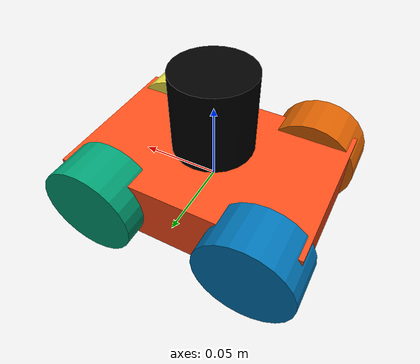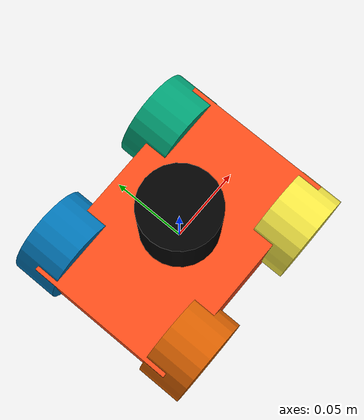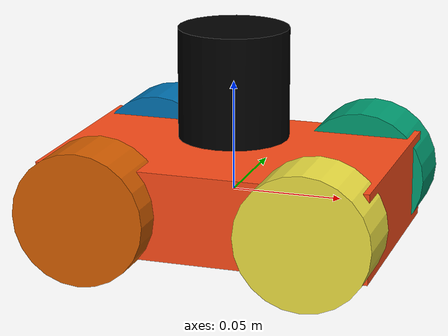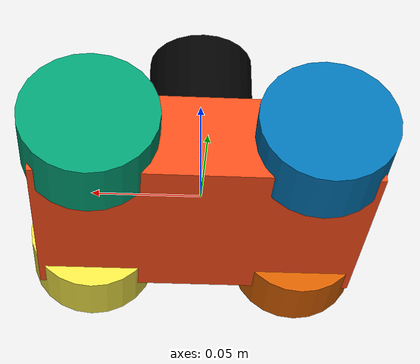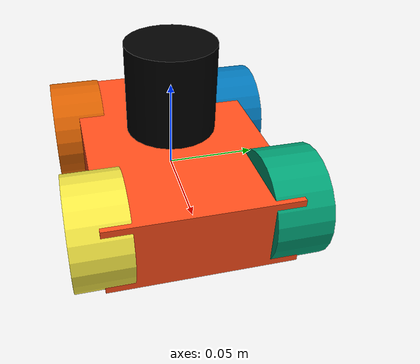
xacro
<?xml version="1.0"?>
<robot name="rosbot1" xmlns:xacro="http://www.ros.org/wiki/xacro">

    <xacro:include filename="materials.xacro" />
    <xacro:include filename="robot_core.xacro" />
    <xacro:include filename="robot_wheels.xacro" />
    <xacro:include filename="lidar.xacro" />

</robot>

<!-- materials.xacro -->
<robot xmlns:xacro="http://ros.org/wiki/xacro">
    <material name="white">
        <color rgba="1 1 1 1" />
    </material>

    <material name="orange">
        <color rgba="1 0.3 0.1 1" />
    </material>

    <material name="blue">
        <color rgba="0.2 0.2 1 1" />
    </material>

    <material name="black">
        <color rgba="0 0 0 1" />
    </material>

    <material name="red">
        <color rgba="1 0 0 1" />
    </material>
</robot>

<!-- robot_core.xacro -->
<robot xmlns:xacro="http://ros.org/wiki/xacro">
    <xacro:property name="chassis_length" value="0.15"/>
    <xacro:property name="chassis_width" value="0.10"/>
    <xacro:property name="chassis_height" value="0.04"/>

    <!-- Define the robot base -->
    <link name="base_link"></link>

    <!-- Define the robot -->
    <link name="robot_link">
        <visual>
            <origin xyz="0 0 0"/>
            <geometry>
                <box size="${chassis_length} ${chassis_width} ${chassis_height}"/>
            </geometry>
            <material name="orange"/>
        </visual>
    </link>

    <!-- Connect the robot to the base -->
    <joint name="robot_joint" type="fixed">
        <origin xyz="0 0 0" rpy="0 0 0" />
        <parent link="base_link" />
        <child link="robot_link" />
    </joint>
</robot>

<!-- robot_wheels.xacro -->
<robot xmlns:xacro="http://ros.org/wiki/xacro">

    <!-- Define the mecanum wheel -->
    <xacro:macro name="mecanum_wheel" params="prefix origin rotation">
        <joint name="${prefix}_joint" type="fixed">
            <origin xyz="${origin}" rpy="${rotation} 0 0"/>
            <parent link="base_link" />
            <child link="${prefix}_wheel_link" />
            <axis xyz="0 0 1" />
        </joint>
        <link name="${prefix}_wheel_link">
            <visual>
                <geometry>
                    <cylinder radius="0.03" length="0.03" />
                    <material name="blue" />
                </geometry>
            </visual>
        </link>
    </xacro:macro>

    <!-- Add mecanum wheels -->
    <xacro:mecanum_wheel prefix="front_left" origin="0.05 0.05 0" rotation="-${pi/2}"/>
    <xacro:mecanum_wheel prefix="front_right" origin="0.05 -0.05 0" rotation="${pi/2}"/>
    <xacro:mecanum_wheel prefix="rear_left" origin="-0.05 0.05 0" rotation="-${pi/2}"/>
    <xacro:mecanum_wheel prefix="rear_right" origin="-0.05 -0.05 0" rotation="${pi/2}"/>

</robot>

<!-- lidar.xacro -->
<robot xmlns:xacro="http://www.ros.org/wiki/xacro">

    <joint name="lidar_joint" type="fixed">
        <origin xyz="0 0 0.05" rpy="0 0 0" />
        <parent link="robot_link" />
        <child link="ldlidar_link" />
    </joint>

    <link name="ldlidar_link">
        <visual>
            <origin xyz="0 0 0" rpy="0 0 0" />
            <geometry>
                <cylinder radius="0.025" length="0.05" />
            </geometry>
            <material name="black" />
        </visual>
    </link>
</robot>
